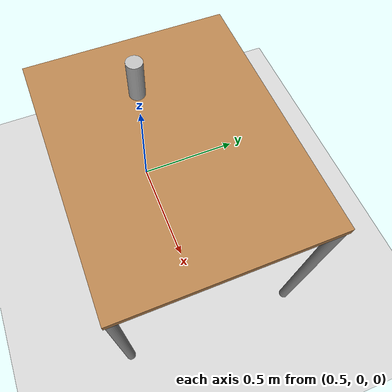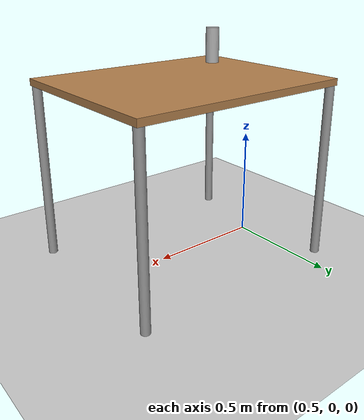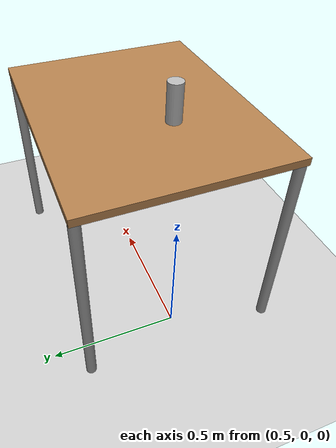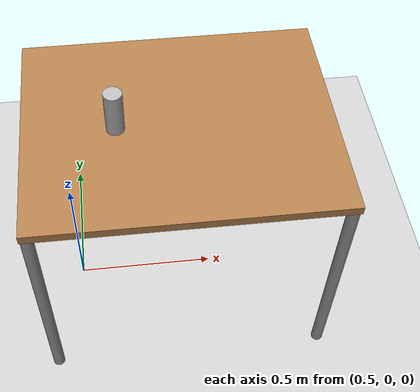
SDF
<?xml version="1.0" ?>
<sdf version="1.4">
  <world name="default">
    <physics type="ode">
      <gravity>0 0 -9.81</gravity>
      <ode>
        <solver>
          <type>quick</type>
          <iters>20</iters>
          <sor>1.0</sor>
        </solver>
        <constraints>
          <cfm>0.0</cfm>
          <erp>0.2</erp>
          <contact_max_correcting_vel>100.0</contact_max_correcting_vel>
          <contact_surface_layer>0.0</contact_surface_layer>
        </constraints>
      </ode>
      <real_time_update_rate>1000</real_time_update_rate>
      <max_step_size>0.001</max_step_size>
    </physics>
    <light type="directional" name="light1">
      <cast_shadows>true</cast_shadows>
      <pose>-2 0 4 0 0 0</pose>
      <diffuse>1.0 1.0 1.0 1</diffuse>
      <specular>0.1 0.1 0.1 1</specular>
      <attenuation>
        <range>20</range>
        <constant>0.9</constant>
        <linear>0.01</linear>
        <quadratic>0.001</quadratic>
      </attenuation>
      <direction>0.2 0.0 -1.0</direction>
    </light>
    <!-- A ground plane -->
    <include>
      <uri>model://ground_plane</uri>
    </include>
    <!-- A table -->
    <include>
      <uri>model://table_0m8</uri>
      <name>table1</name>
      <pose>0.88 0 0 0 0 0</pose>
    </include>
    <!-- Object on the table -->
    <include>
      <uri>model://biscuits_pack</uri>
      <pose>0.68 -0.05 0.93 0 0 2.62</pose>
    </include>

    <gui fullscreen="0">
      <camera name="user_camera">
        <pose>1.152670 -0.041479 3.496780 0.000000 1.123640 3.132190</pose>
        <view_controller>orbit</view_controller>
      </camera>
    </gui>
  </world>
</sdf>

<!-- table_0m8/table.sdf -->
<sdf version='1.4'>
<model name='table'>
      <static>1</static>
      <link name='link'>
        <collision name='surface'>
          <pose>0.000000 0.000000 0.800000 0.000000 0.000000 0.000000</pose>
          <geometry>
            <box>
              <size>1.000000 0.800000 0.030000</size>
            </box>
          </geometry>
          <surface>
            <bounce/>
            <friction>
              <ode/>
            </friction>
            <contact>
              <ode/>
            </contact>
          </surface>
        </collision>
        <visual name='visual1'>
          <pose>0.000000 0.000000 0.800000 0.000000 0.000000 0.000000</pose>
          <geometry>
            <box>
              <size>1.000000 0.800000 0.030000</size>
            </box>
          </geometry>
          <material>
            <script>
              <uri>file://media/materials/scripts/gazebo.material</uri>
              <name>Gazebo/Wood</name>
            </script>
          </material>
        </visual>
        <collision name='front_left_leg'>
          <pose>0.480000 0.380000 0.400000 0.000000 0.000000 0.000000</pose>
          <geometry>
            <cylinder>
              <radius>0.020000</radius>
              <length>0.800000</length>
            </cylinder>
          </geometry>
          <surface>
            <bounce/>
            <friction>
              <ode/>
            </friction>
            <contact>
              <ode/>
            </contact>
          </surface>
        </collision>
        <visual name='front_left_leg'>
          <pose>0.480000 0.380000 0.400000 0.000000 0.000000 0.000000</pose>
          <geometry>
            <cylinder>
              <radius>0.020000</radius>
              <length>0.800000</length>
            </cylinder>
          </geometry>
          <material>
            <script>
              <uri>file://media/materials/scripts/gazebo.material</uri>
              <name>Gazebo/Grey</name>
            </script>
          </material>
        </visual>
        <collision name='front_right_leg'>
          <pose>0.480000 -0.380000 0.400000 0.000000 0.000000 0.000000</pose>
          <geometry>
            <cylinder>
              <radius>0.020000</radius>
              <length>0.800000</length>
            </cylinder>
          </geometry>
          <surface>
            <bounce/>
            <friction>
              <ode/>
            </friction>
            <contact>
              <ode/>
            </contact>
          </surface>
        </collision>
        <visual name='front_right_leg'>
          <pose>0.480000 -0.380000 0.400000 0.000000 0.000000 0.000000</pose>
          <geometry>
            <cylinder>
              <radius>0.020000</radius>
              <length>0.800000</length>
            </cylinder>
          </geometry>
          <material>
            <script>
              <uri>file://media/materials/scripts/gazebo.material</uri>
              <name>Gazebo/Grey</name>
            </script>
          </material>
        </visual>
        <collision name='back_right_leg'>
          <pose>-0.480000 -0.380000 0.400000 0.000000 0.000000 0.000000</pose>
          <geometry>
            <cylinder>
              <radius>0.020000</radius>
              <length>0.800000</length>
            </cylinder>
          </geometry>
          <surface>
            <bounce/>
            <friction>
              <ode/>
            </friction>
            <contact>
              <ode/>
            </contact>
          </surface>
        </collision>
        <visual name='back_right_leg'>
          <pose>-0.480000 -0.380000 0.400000 0.000000 0.000000 0.000000</pose>
          <geometry>
            <cylinder>
              <radius>0.020000</radius>
              <length>0.800000</length>
            </cylinder>
          </geometry>
          <material>
            <script>
              <uri>file://media/materials/scripts/gazebo.material</uri>
              <name>Gazebo/Grey</name>
            </script>
          </material>
        </visual>
        <collision name='back_left_leg'>
          <pose>-0.480000 0.380000 0.400000 0.000000 0.000000 0.000000</pose>
          <geometry>
            <cylinder>
              <radius>0.020000</radius>
              <length>0.800000</length>
            </cylinder>
          </geometry>
          <surface>
            <bounce/>
            <friction>
              <ode/>
            </friction>
            <contact>
              <ode/>
            </contact>
          </surface>
        </collision>
        <visual name='back_left_leg'>
          <pose>-0.480000 0.380000 0.400000 0.000000 0.000000 0.000000</pose>
          <geometry>
            <cylinder>
              <radius>0.020000</radius>
              <length>0.800000</length>
            </cylinder>
          </geometry>
          <material>
            <script>
              <uri>file://media/materials/scripts/gazebo.material</uri>
              <name>Gazebo/Grey</name>
            </script>
          </material>
        </visual>
        <velocity_decay>
          <linear>0.000000</linear>
          <angular>0.000000</angular>
        </velocity_decay>
        <self_collide>0</self_collide>
        <kinematic>0</kinematic>
        <gravity>1</gravity>
      </link>
    </model>
</sdf>

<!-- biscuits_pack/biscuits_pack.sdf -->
<sdf version='1.4'>
  <model name="biscuits_pack">
      <static>0</static>
      <link name='link'>
        <inertial>
          <mass>0.01</mass>
          <inertia>
            <ixx>0.001</ixx>
            <ixy>0.000000</ixy>
            <ixz>0.000000</ixz>
	    <iyy>0.001</iyy>
            <iyz>0.000000</iyz>
            <izz>0.001</izz>
          </inertia>
        </inertial>
        <collision name='collision'>
          <geometry>
            <cylinder>
              <radius>0.029</radius>
              <length>0.15</length>
            </cylinder>
          </geometry>
          <surface>
            <bounce/>
	    <friction>
	      <ode>
                <mu>1000</mu>
                <mu2>1000</mu2>
                <fdir1>0 0 0</fdir1>
	      </ode>
            </friction>
	    <contact>
	      <ode>
                <kd>1</kd>
                <min_depth>0.01</min_depth>
                <max_vel>0</max_vel>
	      </ode>
            </contact>
          </surface>
	  <max_contacts>10</max_contacts>
        </collision>
        <visual name='visual'>
          <geometry>
            <cylinder>
              <radius>0.029</radius>
              <length>0.15</length>
            </cylinder>
          </geometry>
          <material>
            <script>
              <uri>model://biscuits_pack/material/scripts</uri>
              <uri>model://biscuits_pack/material/textures</uri>
              <name>Custom/biscuits_pack</name>
            </script>
          </material>
        </visual>
        <velocity_decay>
          <linear>0.000000</linear>
          <angular>0.000000</angular>
        </velocity_decay>
        <self_collide>0</self_collide>
        <kinematic>0</kinematic>
        <gravity>1</gravity>
      </link>
  </model>
</sdf>
